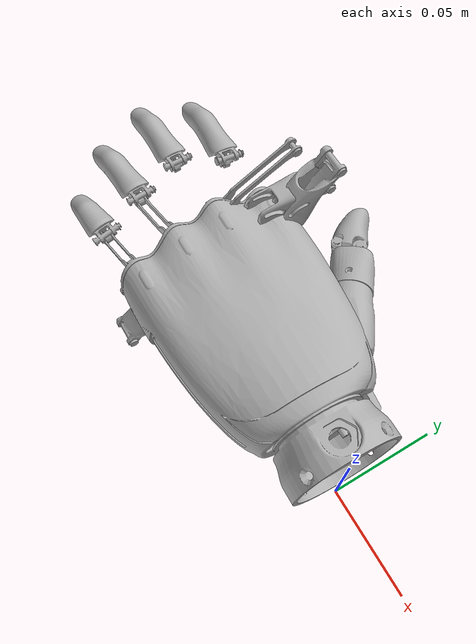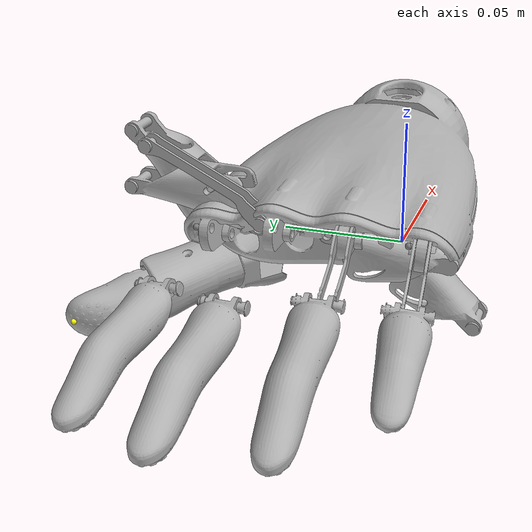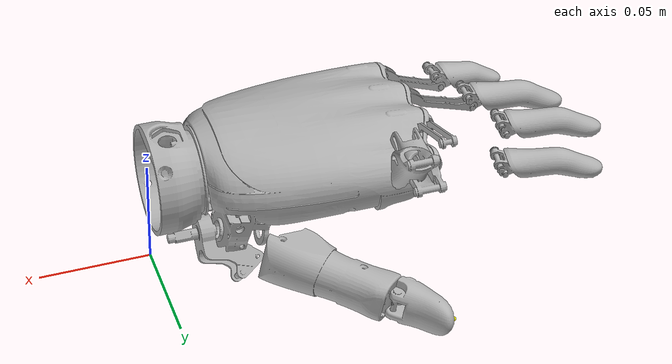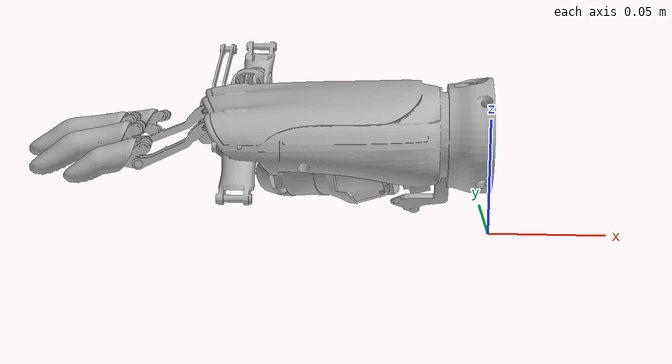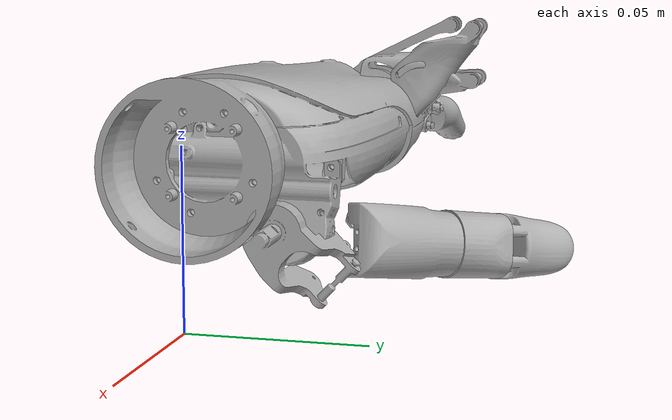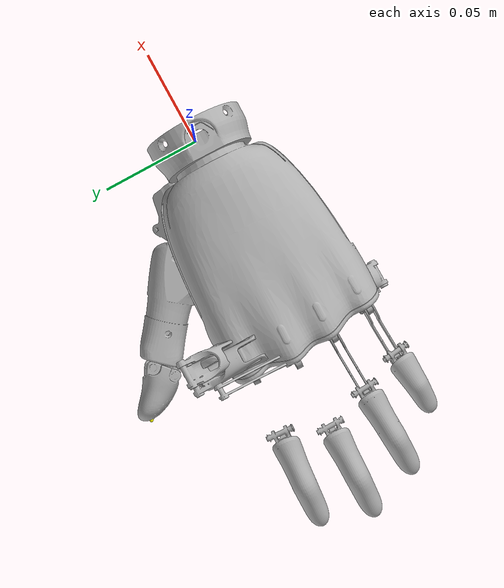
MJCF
<mujoco model="rohand_left">
<option timestep="0.001" solver="Newton" iterations="200" integrator="implicitfast"
        gravity="0 0 -9.81" sdf_iterations="50" sdf_initpoints="50" ccd_iterations="50"/>

  <default>
    <default class="robot">
      <default class="visual">
        <geom contype="0" conaffinity="0" group="2"/>
      </default>
      <default class="collision">
        <geom material="collision_material" condim="4" contype="1" conaffinity="1" priority="1" group="3"  margin="1e-4"   solref="0.01 1" friction="0.5 0.1 0.001"/>
      </default>
      <joint damping="0.1" armature="0.001" frictionloss="0.0"/>
    </default>
  </default>

  <compiler angle="radian" meshdir="." balanceinertia="true"/>
  <size nconmax="5000" njmax="5000"/>

  <worldbody>
    <body name="base_link" pos="0 0 0.04701411" childclass="robot">
     <joint name="root" type="free"/>
      <inertial pos="-0.0600175965544457 0.00173674741822627 -0.000192816298917277" mass="0.0559618850522869" diaginertia="2.5023287948442e-05 3.35110967631856e-05 5.16602242361807e-05"/>
      <geom name="base_link_visual"    type="mesh" mesh="base_link.STL" material="default_material" class="visual"/>
      <site name="base_site_if" pos="-0.11976 0.03521 0.0028896" size="0.001"/>
      <site name="base_site_mf" pos="-0.12326 0.01021 0.0074296" size="0.001" />
      <site name="base_site_rf" pos="-0.12076 -0.00921 0.0065896" size="0.001"/>
      <site name="base_site_lf" pos="-0.1171 -0.02731 0.004496" size="0.001"/>

      <body name="if_proximal_link" pos="-0.11211 0.037738 -0.0018032">
        <inertial pos="-0.0180401934810981 -0.00594318681409525 -0.00214940799795961" mass="0.00154987032874225" diaginertia="6.20379278686707e-08 1.54247144894286e-07 1.69493178080606e-07"/>
        <joint name="if_proximal_link" type="hinge" range="-1.5 0 " axis="0.082428 0.99278 -0.087177"  />
        <geom name="if_proximal_link_collision" type="mesh" mesh="if_proximal_link.STL" class="collision"/>
        <geom name="if_proximal_link_visual"    type="mesh" mesh="if_proximal_link.STL" material="default_material" class="visual"/>
        <body name="if_distal_link" pos="-0.035776 0.0028401 -0.0014841">
          <inertial pos="-0.0242417824734568 -0.00576634331785805 -0.00601095840966076" mass="0.0042269383122795" diaginertia="9.82682026496382e-08 5.59160651416525e-07 5.40423175644971e-07"/>
          <joint name="if_distal_link" type="hinge" axis="0.082428 0.99278 -0.087177"/>
          <geom name="if_distal_link_collision" type="mesh" mesh="if_distal_link.STL" class="collision"/>
          <geom name="if_distal_link_visual"    type="mesh" mesh="if_distal_link.STL" material="default_material" class="visual"/>
          <site name="if_distal_site" pos="-.003 -0.007 -0.007" size="0.001" />
          <site name="if_distal_site_a" pos="-.044 -0.005 -0.016" size="0.0000001" rgba="1 1 0 1"/>
          <site name="if_distal_site_ball" pos="-.042 -0.005 -0.012" size="0.000001" rgba="1 1 0 1"/>

        </body>
      </body>

      <body name="mf_proximal_link" pos="-0.11587 0.017792 0.0031262">
        <inertial pos="-0.0199797334891479 -0.00693582390555647 -0.00446806914321724" mass="0.00189508780970619" diaginertia="7.78059237332349e-08 2.3404709814833e-07 2.46206545141109e-07" />
        <joint name="mf_proximal_link" type="hinge" axis="0.013244 0.99991 4.2699E-05" />
        <geom name="mf_proximal_link_visual" type="mesh" mesh="mf_proximal_link.STL" material="default_material" class="visual" />
        <body name="mf_distal_link" pos="-0.040851 0.00054126 -0.0035367">
          <inertial pos="-0.0237385164850207 -0.00688494079178076 -0.00679220850075163" mass="0.0042269628029676" diaginertia="9.80058679932351e-08 5.60810951030143e-07 5.39048309363154e-07" />
          <joint name="mf_distal_link" type="hinge" axis="0.013244 0.99991 2.1055E-05" />
          <geom name="mf_distal_link_collision" type="mesh" mesh="mf_distal_link.STL" class="collision" />
          <geom name="mf_distal_link_visual" type="mesh" mesh="mf_distal_link.STL" material="default_material" class="visual" />
          <site name="mf_distal_site" pos="-.003 -0.00681 -0.0068" size="0.001" />

        </body>
      </body>
      <body name="mf_connecting_link" pos="-0.12334 0.014341 0.0075259">
        <inertial pos="-0.0173259476733337 -0.00342060961323609 -0.00839513952079128" mass="0.000216184518525667" diaginertia="5.71913358376963e-09 3.85063451062604e-08 3.28217930253539e-08" />
        <joint name="mf_connecting_link" type="hinge" axis="0.013244 0.99991 2.1054E-05" />
        <geom name="mf_connecting_link_visual" type="mesh" mesh="mf_connecting_link.STL" material="default_material" class="visual" />
        <site name="mf_rod_a" pos="0 -0.004 0" size="0.001" />
        <site name="mf_rod_b" pos="-0.03632 -0.0027 -0.0148" size="0.001" />
      </body>
      <body name="rf_proximal_link" pos="-0.11364 -0.0022565 0.0023761">
        <inertial pos="-0.0169549089835899 -0.00817221852533054 -0.00333737800773532" mass="0.00154985371268108" diaginertia="6.16430441306532e-08 1.54505752798055e-07 1.69627005510225e-07" />
        <joint name="rf_proximal_link" type="hinge" axis="-0.05658 0.9984 2.102E-05" />
        <geom name="rf_proximal_link_collision" type="mesh" mesh="rf_proximal_link.STL" class="collision" />
        <geom name="rf_proximal_link_visual" type="mesh" mesh="rf_proximal_link.STL" material="default_material" class="visual" />
        <body name="rf_distal_link" pos="-0.035766 -0.0020268 -0.0026198">
          <inertial pos="-0.022696111452442 -0.00849649226724736 -0.00835478756750876" mass="0.00422730983553646" diaginertia="1.16496262714894e-07 5.59567957009536e-07 5.22034079641838e-07" />
          <joint name="rf_distal_link" type="hinge" axis="-0.05658 0.9984 2.102E-05" />
          <geom name="rf_distal_link_collision" type="mesh" mesh="rf_distal_link.STL" class="collision" />
          <geom name="rf_distal_link_visual" type="mesh" mesh="rf_distal_link.STL" material="default_material" class="visual" />
          <site name="rf_distal_site" pos="-.00212 -0.00791 -0.0072" size="0.001" />

        </body>
      </body>
      <body name="rf_connecting_link" pos="-0.12076 -0.00721 0.006896">
        <inertial pos="-0.0182151281756033 0.0164706758619828 -0.00574282817068492" mass="0.000197692354337264" diaginertia="4.92838052690555e-09 2.70004879799029e-08 2.22353755729308e-08" />
        <joint name="rf_connecting_link" type="hinge" axis="-0.05658 0.9984 2.102E-05" />

        <geom name="rf_connecting_link_visual" type="mesh" mesh="rf_connecting_link.STL" material="default_material" class="visual" />
        <site name="rf_rod_a" pos="0 0 0" size="0.001" />
        <site name="rf_rod_b" pos="-0.03102 -0.005 -0.0145" size="0.001" />
      </body>
      <body name="lf_proximal_link" pos="-0.11032 -0.022406 0.00045133">
        <inertial pos="-0.0146179038371213 -0.00865933449081624 -0.00404765240562847" mass="0.00136661208486985" diaginertia="5.65517835433433e-08 1.12186752570062e-07 1.27246247373284e-07" />
        <joint name="lf_proximal_link" type="hinge" axis="-0.11759 0.98923 0.087106" />
        <geom name="lf_proximal_link_collision" type="mesh" mesh="lf_proximal_link.STL" class="collision" />
        <geom name="lf_proximal_link_visual" type="mesh" mesh="lf_proximal_link.STL" material="default_material" class="visual" />
        <body name="lf_distal_link" pos="-0.031562 -0.0034532 -0.003392">
          <inertial pos="-0.014370796499536 -0.008390245956126 -0.00657795990320131" mass="0.00262042947413116" diaginertia="5.14865241597797e-08 1.52166371803539e-07 1.45327848752015e-07" />
          <joint name="lf_distal_link" type="hinge" axis="-0.11759 0.98923 0.087106" />
          <geom name="lf_distal_link_collision" type="mesh" mesh="lf_distal_link.STL" class="collision" />
          <geom name="lf_distal_link_visual" type="mesh" mesh="lf_distal_link.STL" material="default_material" class="visual" />
          <site name="lf_distal_site" pos="-.0021 -0.0057 -0.0075" size="0.001" />

        </body>
      </body>
      <body name="lf_connecting_link" pos="-0.11723 -0.027174 0.0045247">
        <inertial pos="-0.0121624488477445 -0.00439577388851597 -0.00839995412997622" mass="0.000176980932045691" diaginertia="4.93706927346499e-09 2.00115768299624e-08 1.52537402638674e-08" />
        <joint name="lf_connecting_link" type="hinge" axis="-0.11759 0.98924 0.087085" />
        <geom name="lf_connecting_link_visual" type="mesh" mesh="lf_connecting_link.STL" material="default_material" class="visual" />
        <site name="lf_rod_a" pos="0 0 0" size="0.001" />
        <site name="lf_rod_b" pos="-0.0267 -0.0045 -0.015" size="0.001" />
      </body>
      <body name="th_root_link" pos="-0.024656 0.019554 -0.022107">
        <inertial pos="-0.0182055985206398 0.0062027796983799 -0.00602504691008154" mass="0.00217782401907458" diaginertia="1.92048266024776e-07 1.97385210109919e-07 2.25369870005598e-07" />
        <joint name="th_root_link" type="hinge" range="0 1.57" axis="-0.97616 0.01293 -0.21667" />
        <geom name="th_root_link_collision" type="mesh" mesh="th_root_link.STL" class="collision" />
        <geom name="th_root_link_visual" type="mesh" mesh="th_root_link.STL" material="default_material" class="visual" />
        <body name="th_proximal_link" pos="-0.025097 0.021667 -0.015581" quat="0.7799833070933437 0.010018767616566913 0.6255953965455758 0.012492588689274685">
          <inertial pos="-0.00770018684827107 0.011788302524247 -0.0170644760229541" mass="0.00501318922026079" diaginertia="2.07793414915373e-06 1.50672511173197e-06 6.75564984341833e-07" />
          <joint name="th_proximal_link" type="hinge" axis="1 0 0" />
          <geom name="th_proximal_link_collision" type="mesh"  mesh="th_proximal_link.STL" class="collision" />
          <geom name="th_proximal_link_visual" type="mesh" mesh="th_proximal_link.STL" material="default_material" class="visual" />
          <body name="th_distal_link" pos="-0.00010351 0.023735 -0.046849" quat="0.779981602957747 -0.010021051411947122 -0.6255974557940889 -0.012494033777185262">
            <inertial pos="-0.00470321656966432 0.0108131649563329 0.00709251414154711" mass="0.00509494222453049" diaginertia="2.72112772656721e-07 2.01886474111303e-07 2.43694502794788e-07" />
            <joint name="th_distal_link" type="hinge" axis="0.21698 0.032029 -0.97565" />
            <geom name="th_distal_link_collision" type="mesh" mesh="th_distal_link.STL" class="collision" />
            <geom name="th_distal_link_visual" type="mesh" mesh="th_distal_link.STL" material="default_material" class="visual" />
            <site name="th_site" pos="0.007 0.0071 0.01" size="0.001" />
            <site name="tf_distal_site_a" pos="-0.016 0.02 0.006" size="0.001" rgba="1 1 0 1"/>
            <site name="tf_distal_site_ball" pos="-0.012 0.018 0.006" size="0.00000001" rgba="1 1 0 1"/>

          </body>
        </body>
      </body>
    </body>

    <light pos="0 0 2." dir="0 0 -1" directional="true"/>
  </worldbody>
<equality>

  <connect site1="base_site_mf" site2="mf_rod_a"  solref="0.001 1" solimp="0.9 0.95 0.001"/>
  <connect site1="mf_distal_site" site2="mf_rod_b"  solref="0.001 1" solimp="0.9 0.95 0.001"/>

  <connect site1="base_site_rf" site2="rf_rod_a"  solref="0.001 1" solimp="0.99 0.999 0.001"/>
  <connect site1="rf_distal_site" site2="rf_rod_b"  solref="0.001 1" solimp="0.9 0.95 0.001"/>

  <connect site1="base_site_lf" site2="lf_rod_a"  solref="0.001 1" solimp="0.9 0.95 0.001"/>
  <connect site1="lf_distal_site" site2="lf_rod_b"  solref="0.001 1" solimp="0.9 0.95 0.001"/>

</equality>
  <asset>
    <material name="default_material" rgba="0.7 0.7 0.7 1" />
    <material name="collision_material" rgba="1.0 0.28 0.1 0.9" />
    <mesh name="base_link.STL" file="meshes_l/base_link.STL" />
    <mesh name="if_slider_link.STL" file="meshes_l/if_slider_link.STL" />
    <mesh name="if_slider_abpart_link.STL" file="meshes_l/if_slider_abpart_link.STL" inertia="shell" />
    <mesh name="if_proximal_link.STL" file="meshes_l/if_proximal_link.STL" />
    <mesh name="if_distal_link.STL" file="meshes_l/if_distal_link.STL" />
    <mesh name="if_connecting_link.STL" file="meshes_l/if_connecting_link.STL" />
    <mesh name="mf_slider_link.STL" file="meshes_l/mf_slider_link.STL" />
    <mesh name="mf_slider_abpart_link.STL" file="meshes_l/mf_slider_abpart_link.STL" />
    <mesh name="mf_proximal_link.STL" file="meshes_l/mf_proximal_link.STL" />
    <mesh name="mf_distal_link.STL" file="meshes_l/mf_distal_link.STL" />
    <mesh name="mf_connecting_link.STL" file="meshes_l/mf_connecting_link.STL" />
    <mesh name="rf_slider_link.STL" file="meshes_l/rf_slider_link.STL" />
    <mesh name="rf_slider_abpart_link.STL" file="meshes_l/rf_slider_abpart_link.STL" inertia="shell" />
    <mesh name="rf_proximal_link.STL" file="meshes_l/rf_proximal_link.STL" />
    <mesh name="rf_distal_link.STL" file="meshes_l/rf_distal_link.STL" />
    <mesh name="rf_connecting_link.STL" file="meshes_l/rf_connecting_link.STL" />
    <mesh name="lf_slider_link.STL" file="meshes_l/lf_slider_link.STL" />
    <mesh name="lf_slider_abpart_link.STL" file="meshes_l/lf_slider_abpart_link.STL" />
    <mesh name="lf_proximal_link.STL" file="meshes_l/lf_proximal_link.STL" />
    <mesh name="lf_distal_link.STL" file="meshes_l/lf_distal_link.STL" />
    <mesh name="lf_connecting_link.STL" file="meshes_l/lf_connecting_link.STL" />
    <mesh name="th_root_link.STL" file="meshes_l/th_root_link.STL" />
    <mesh name="th_proximal_link.STL" file="meshes_l/th_proximal_link.STL" />
    <mesh name="th_slider_link.STL" file="meshes_l/th_slider_link.STL" />
    <mesh name="th_connecting_link.STL" file="meshes_l/th_connecting_link.STL" />
    <mesh name="th_distal_link.STL" file="meshes_l/th_distal_link.STL" />
  </asset>

  <actuator>
  <position name="if_proximal_motor" joint="if_proximal_link"
            kp="200" kv="10"
            ctrlrange="-1.4 0" ctrllimited="true"
            forcerange="-500 500" forcelimited="true"
            gear="1"/>
    <position name="if_distal_motor" joint="if_distal_link"
            kp="200" kv="10"
            ctrlrange="-1.7 0" ctrllimited="true"
            forcerange="-100 100" forcelimited="true"
            gear="1"/>
  <position name="mf_proximal_motor" joint="mf_proximal_link"
            kp="200" kv="10"
            ctrlrange="-1.4 0" ctrllimited="true"
            forcerange="-500 500" forcelimited="true"
            gear="1"/>
  <position name="rf_proximal_motor" joint="rf_proximal_link"
            kp="200" kv="10"
            ctrlrange="-1.4 0" ctrllimited="true"
            forcerange="-500 500" forcelimited="true"
            gear="1"/>
  <position name="lf_proximal_motor" joint="lf_proximal_link"
            kp="200" kv="10"
            ctrlrange="-1.4 0" ctrllimited="true"
            forcerange="-500 500" forcelimited="true"
            gear="1"/>
 <position name="th_proximal_motor" joint="th_proximal_link"
            kp="200" kv="10"
            ctrlrange="-1.57 0" ctrllimited="true"
            forcerange="-500 500" forcelimited="true"
            gear="1"/>
 <position name="th_distal_motor" joint="th_distal_link"
            kp="200" kv="10"
            ctrlrange="-1.57 0" ctrllimited="true"
            forcerange="-500 500" forcelimited="true"
            gear="1"/>
    <position name="th_root_link" joint="th_root_link" ctrlrange="0 1.57" forcerange="-4000 4000"/>
  </actuator>
</mujoco>
